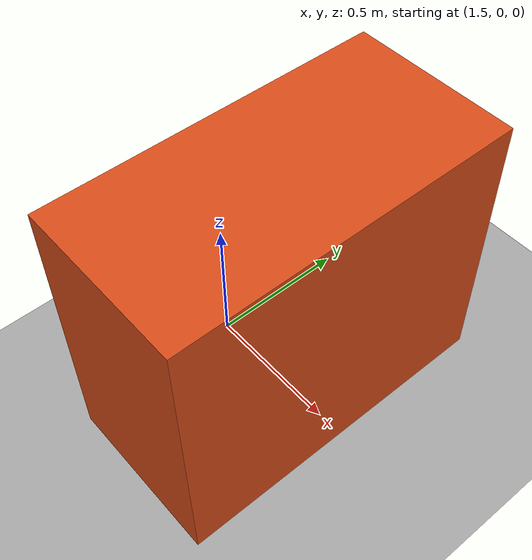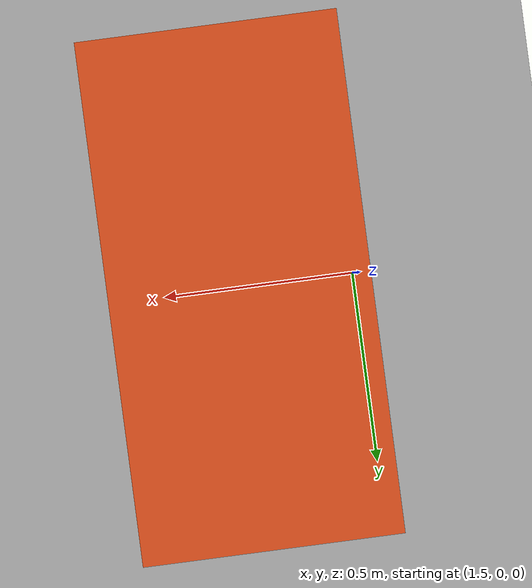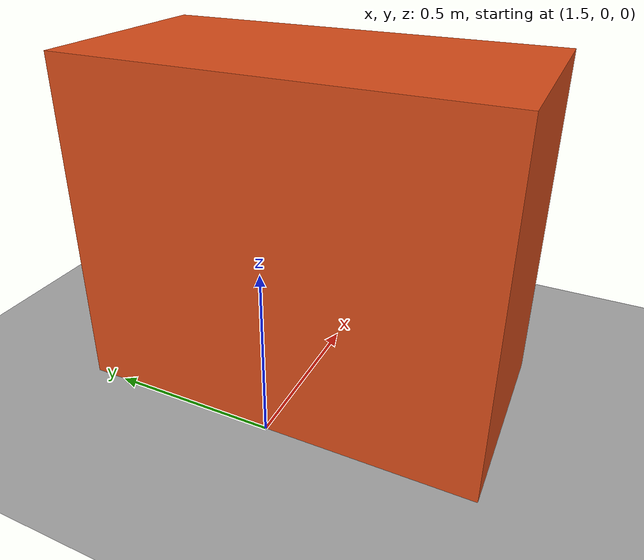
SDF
<?xml version="1.0"?>
<sdf version="1.10">
  <world name="cstam_robot_test_world">
    <physics name="1ms" type="ignored">
      <max_step_size>0.001</max_step_size>
      <real_time_factor>1.0</real_time_factor>
    </physics>
    <plugin filename="gz-sim-physics-system" name="gz::sim::systems::Physics"/>
    <plugin filename="gz-sim-user-commands-system" name="gz::sim::systems::UserCommands"/>
    <plugin filename="gz-sim-scene-broadcaster-system" name="gz::sim::systems::SceneBroadcaster"/>
    <plugin filename="gz-sim-sensors-system" name="gz::sim::systems::Sensors">
      <render_engine>ogre2</render_engine>
    </plugin>

    <light name="sun" type="directional">
      <cast_shadows>true</cast_shadows>
      <pose>0 0 8 0 0 0</pose>
      <diffuse>0.8 0.8 0.8 1</diffuse>
      <specular>0.2 0.2 0.2 1</specular>
      <direction>-0.4 0.2 -0.9</direction>
    </light>

    <model name="ground_plane">
      <static>true</static>
      <link name="link">
        <collision name="collision">
          <geometry><plane><normal>0 0 1</normal><size>30 30</size></plane></geometry>
        </collision>
        <visual name="visual">
          <geometry><plane><normal>0 0 1</normal><size>30 30</size></plane></geometry>
          <material><ambient>0.65 0.65 0.65 1</ambient><diffuse>0.65 0.65 0.65 1</diffuse></material>
        </visual>
      </link>
    </model>

    <model name="scan_obstacle">
      <static>true</static>
      <pose>1.8 0 0.5 0 0 0</pose>
      <link name="link">
        <collision name="collision"><geometry><box><size>0.6 1.2 1.0</size></box></geometry></collision>
        <visual name="visual">
          <geometry><box><size>0.6 1.2 1.0</size></box></geometry>
          <material><ambient>0.75 0.25 0.08 1</ambient><diffuse>0.85 0.30 0.10 1</diffuse></material>
        </visual>
      </link>
    </model>
  </world>
</sdf>
